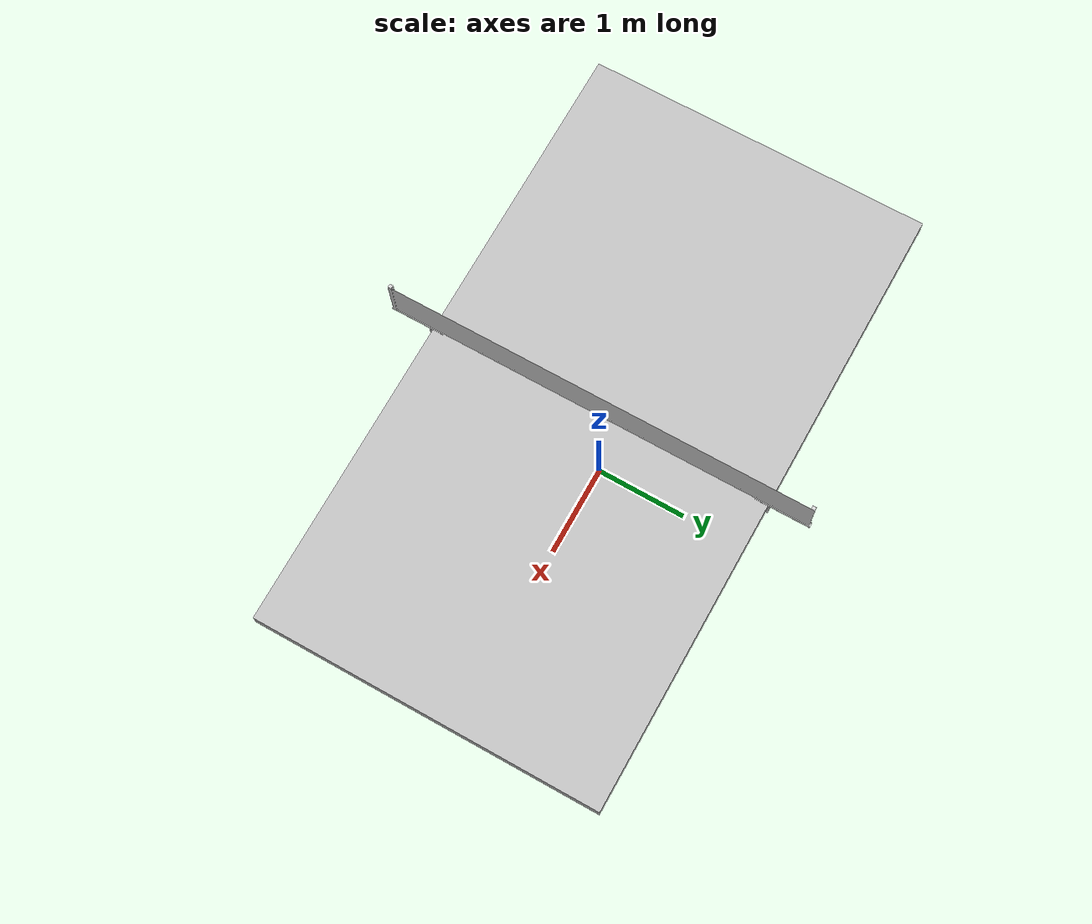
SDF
<?xml version="1.0"?>
<sdf version="1.5">
<model name="tabletennis_table">
  <pose>0 0 0 0 0 0</pose>
    <link name="link">
      <velocity_decay>
        <linear>0</linear>
        <angular>0.001</angular>
      </velocity_decay>
      <inertial>
        <mass>100</mass>
        <inertia>
          <ixx>38</ixx>
          <ixy>0.0</ixy>
          <ixz>0.0</ixz>
          <iyy>38</iyy>
          <iyz>0.0</iyz>
          <izz>38</izz>
        </inertia>
      </inertial>
      <collision name="collision">
        <geometry>
          <mesh>
            <uri>model://tabletennis_table/meshes/tabletennis_table.dae</uri>
          </mesh>
        </geometry>
        <surface>
          <friction>
            <ode>
              <mu>0.05</mu>
              <mu2>0.05</mu2>
            </ode>
          </friction>
          <bounce>
            <restitution_coefficient>0.8</restitution_coefficient>
            <threshold>0.0</threshold>
          </bounce>
          <contact>
            <ode>
              <max_vel>1</max_vel>
            </ode>
          </contact>
        </surface>
      </collision>
      <visual name="visual">
        <geometry>
          <mesh>
            <uri>model://tabletennis_table/meshes/tabletennis_table.dae</uri>
          </mesh>
        </geometry>
      </visual>
    </link>
    <static>1</static>
  </model>
</sdf>
